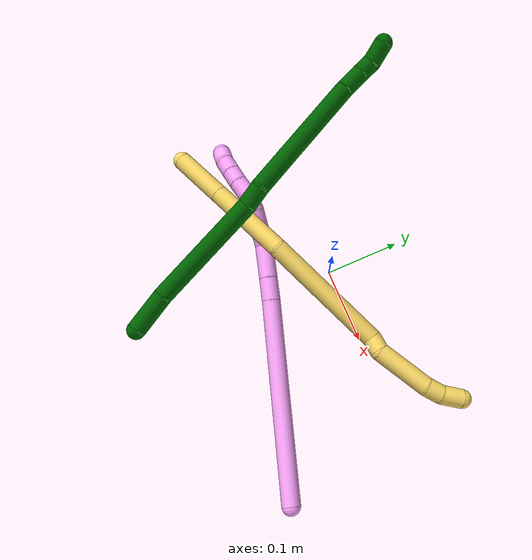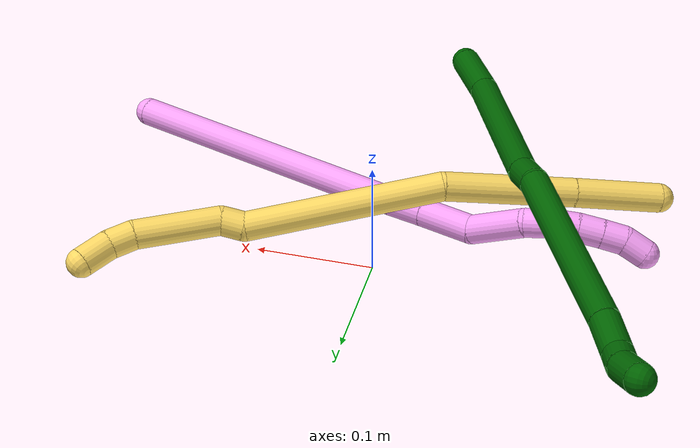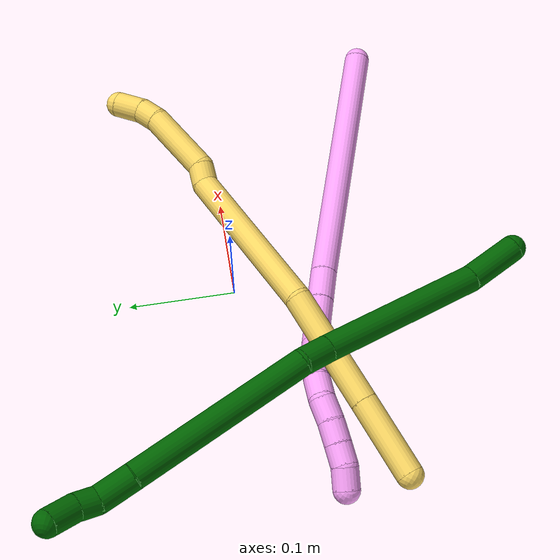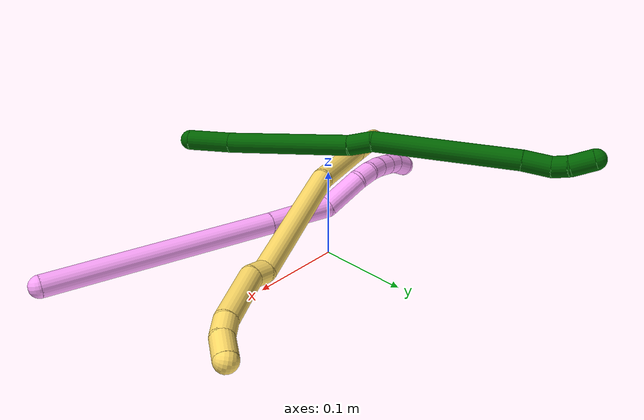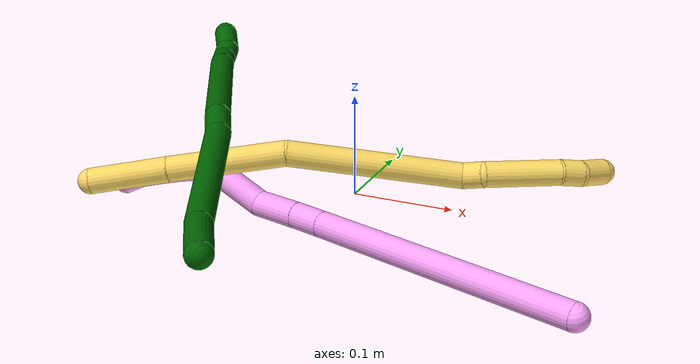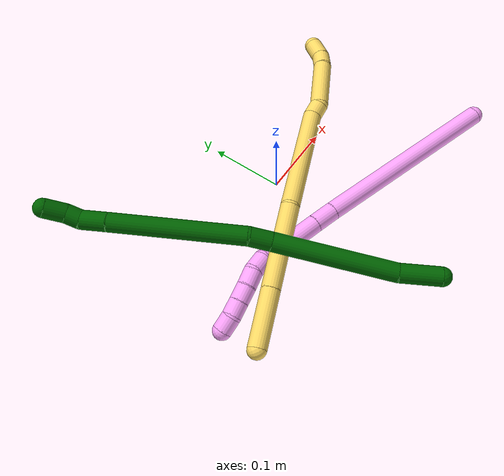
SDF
<sdf version="1.7">
 <world name="default">
  <model name="photoneo_s_sensor">
   <static>1</static>
   <pose>0 0 2 1.57079 1.57079 3.14159</pose>
   <link name="link">
    <inertial><mass>0.1</mass></inertial>
    <sensor name="sensor" type="depth">
     <update_rate>30</update_rate>
     <camera>
      <horizontal_fov>1.22</horizontal_fov>
      <image><width>1920</width><height>1200</height><format>B8G8R8</format></image>
      <clip><near>0.1</near><far>4</far></clip>
      <depth_camera><output>points</output></depth_camera>
     </camera>
     <plugin name="camera_plugin" filename="libgazebo_ros_depth_camera.so">
      <baseline>0.2</baseline>
      <alwaysOn>1</alwaysOn>
      <updateRate>0.0</updateRate>
      <cameraName>camera_ir</cameraName>
      <imageTopicName>/camera/color/image_raw</imageTopicName>
      <cameraInfoTopicName>/camera/color/camera_info</cameraInfoTopicName>
      <depthImageTopicName>/camera/depth/image_raw</depthImageTopicName>
      <depthImageCameraInfoTopicName>/camera/depth/camera_info</depthImageCameraInfoTopicName>
      <pointCloudTopicName>/camera/depth/points</pointCloudTopicName>
      <frameName>fr_optical</frameName>
      <pointCloudCutoff>0.1</pointCloudCutoff>
      <pointCloudCutoffMax>2.0</pointCloudCutoffMax>
      <distortionK1>0</distortionK1>
      <distortionK2>0</distortionK2>
      <distortionK3>0</distortionK3>
      <distortionT1>0</distortionT1>
      <distortionT2>0</distortionT2>
      <CxPrime>0</CxPrime>
      <Cx>0</Cx>
      <Cy>0</Cy>
      <focalLength>0</focalLength>
      <hackBaseline>0</hackBaseline>
     </plugin>
    </sensor>
   </link>
  </model>
  <model name="4">
   <static>0</static>
   <link name="4">
    <collision name="collision-cylinder-e_1_1_4">
     <pose>-0.129312 0.028357 0.001191 -1.52883 -1.35473 1.31392</pose>
     <geometry><cylinder><radius>0.0125</radius><length>0.26478</length></cylinder></geometry>
     <surface>
      <friction><ode><mu>1.16</mu><mu2>1.16</mu2><slip1>0</slip1><slip2>0</slip2></ode></friction>
      <contact><ode><kp>1e+06</kp><kd>1</kd><max_vel>0</max_vel><min_depth>0.001</min_depth></ode></contact>
     </surface>
    </collision>
    <visual name="visual-cylinder-e_1_1_4">
     <pose>-0.129312 0.028357 0.001191 -1.52883 -1.35473 1.31392</pose>
     <geometry><cylinder><radius>0.0125</radius><length>0.26478</length></cylinder></geometry>
     <material><ambient>1 0.65098 0.996078 1</ambient></material>
    </visual>
    <collision name="collision-cylinder-e_2_4_5">
     <pose>-0.273725 0.060419 0.002257 -1.60443 -1.33014 1.36294</pose>
     <geometry><cylinder><radius>0.0125</radius><length>0.031099</length></cylinder></geometry>
     <surface>
      <friction><ode><mu>1.16</mu><mu2>1.16</mu2><slip1>0</slip1><slip2>0</slip2></ode></friction>
      <contact><ode><kp>1e+06</kp><kd>1</kd><max_vel>0</max_vel><min_depth>0.001</min_depth></ode></contact>
     </surface>
    </collision>
    <visual name="visual-cylinder-e_2_4_5">
     <pose>-0.273725 0.060419 0.002257 -1.60443 -1.33014 1.36294</pose>
     <geometry><cylinder><radius>0.0125</radius><length>0.031099</length></cylinder></geometry>
     <material><ambient>1 0.65098 0.996078 1</ambient></material>
    </visual>
    <collision name="collision-cylinder-e_3_5_6">
     <pose>-0.311508 0.069875 0.002469 -1.51244 -1.32202 1.26587</pose>
     <geometry><cylinder><radius>0.0125</radius><length>0.046803</length></cylinder></geometry>
     <surface>
      <friction><ode><mu>1.16</mu><mu2>1.16</mu2><slip1>0</slip1><slip2>0</slip2></ode></friction>
      <contact><ode><kp>1e+06</kp><kd>1</kd><max_vel>0</max_vel><min_depth>0.001</min_depth></ode></contact>
     </surface>
    </collision>
    <visual name="visual-cylinder-e_3_5_6">
     <pose>-0.311508 0.069875 0.002469 -1.51244 -1.32202 1.26587</pose>
     <geometry><cylinder><radius>0.0125</radius><length>0.046803</length></cylinder></geometry>
     <material><ambient>1 0.65098 0.996078 1</ambient></material>
    </visual>
    <collision name="collision-cylinder-e_4_6_7">
     <pose>-0.356661 0.081131 -0.008137 -2.67557 -1.07178 2.38121</pose>
     <geometry><cylinder><radius>0.0125</radius><length>0.051187</length></cylinder></geometry>
     <surface>
      <friction><ode><mu>1.16</mu><mu2>1.16</mu2><slip1>0</slip1><slip2>0</slip2></ode></friction>
      <contact><ode><kp>1e+06</kp><kd>1</kd><max_vel>0</max_vel><min_depth>0.001</min_depth></ode></contact>
     </surface>
    </collision>
    <visual name="visual-cylinder-e_4_6_7">
     <pose>-0.356661 0.081131 -0.008137 -2.67557 -1.07178 2.38121</pose>
     <geometry><cylinder><radius>0.0125</radius><length>0.051187</length></cylinder></geometry>
     <material><ambient>1 0.65098 0.996078 1</ambient></material>
    </visual>
    <collision name="collision-cylinder-e_5_7_8">
     <pose>-0.388567 0.091933 -0.021413 -1.9856 -1.02034 1.41807</pose>
     <geometry><cylinder><radius>0.0125</radius><length>0.022136</length></cylinder></geometry>
     <surface>
      <friction><ode><mu>1.16</mu><mu2>1.16</mu2><slip1>0</slip1><slip2>0</slip2></ode></friction>
      <contact><ode><kp>1e+06</kp><kd>1</kd><max_vel>0</max_vel><min_depth>0.001</min_depth></ode></contact>
     </surface>
    </collision>
    <visual name="visual-cylinder-e_5_7_8">
     <pose>-0.388567 0.091933 -0.021413 -1.9856 -1.02034 1.41807</pose>
     <geometry><cylinder><radius>0.0125</radius><length>0.022136</length></cylinder></geometry>
     <material><ambient>1 0.65098 0.996078 1</ambient></material>
    </visual>
    <collision name="collision-cylinder-e_6_8_9">
     <pose>-0.406127 0.104699 -0.023736 -1.56943 -0.827636 0.826629</pose>
     <geometry><cylinder><radius>0.0125</radius><length>0.022074</length></cylinder></geometry>
     <surface>
      <friction><ode><mu>1.16</mu><mu2>1.16</mu2><slip1>0</slip1><slip2>0</slip2></ode></friction>
      <contact><ode><kp>1e+06</kp><kd>1</kd><max_vel>0</max_vel><min_depth>0.001</min_depth></ode></contact>
     </surface>
    </collision>
    <visual name="visual-cylinder-e_6_8_9">
     <pose>-0.406127 0.104699 -0.023736 -1.56943 -0.827636 0.826629</pose>
     <geometry><cylinder><radius>0.0125</radius><length>0.022074</length></cylinder></geometry>
     <material><ambient>1 0.65098 0.996078 1</ambient></material>
    </visual>
    <collision name="collision-cylinder-e_7_9_10">
     <pose>-0.422238 0.118926 -0.022634 -1.4107 -0.861898 0.746284</pose>
     <geometry><cylinder><radius>0.0125</radius><length>0.021034</length></cylinder></geometry>
     <surface>
      <friction><ode><mu>1.16</mu><mu2>1.16</mu2><slip1>0</slip1><slip2>0</slip2></ode></friction>
      <contact><ode><kp>1e+06</kp><kd>1</kd><max_vel>0</max_vel><min_depth>0.001</min_depth></ode></contact>
     </surface>
    </collision>
    <visual name="visual-cylinder-e_7_9_10">
     <pose>-0.422238 0.118926 -0.022634 -1.4107 -0.861898 0.746284</pose>
     <geometry><cylinder><radius>0.0125</radius><length>0.021034</length></cylinder></geometry>
     <material><ambient>1 0.65098 0.996078 1</ambient></material>
    </visual>
    <collision name="collision-cylinder-e_8_10_11">
     <pose>-0.4378 0.132133 -0.020199 -1.36539 -0.855318 0.709844</pose>
     <geometry><cylinder><radius>0.0125</radius><length>0.020081</length></cylinder></geometry>
     <surface>
      <friction><ode><mu>1.16</mu><mu2>1.16</mu2><slip1>0</slip1><slip2>0</slip2></ode></friction>
      <contact><ode><kp>1e+06</kp><kd>1</kd><max_vel>0</max_vel><min_depth>0.001</min_depth></ode></contact>
     </surface>
    </collision>
    <visual name="visual-cylinder-e_8_10_11">
     <pose>-0.4378 0.132133 -0.020199 -1.36539 -0.855318 0.709844</pose>
     <geometry><cylinder><radius>0.0125</radius><length>0.020081</length></cylinder></geometry>
     <material><ambient>1 0.65098 0.996078 1</ambient></material>
    </visual>
    <collision name="collision-cylinder-e_9_11_2">
     <pose>-0.453259 0.143935 -0.01468 -0.90841 -0.859656 0.440384</pose>
     <geometry><cylinder><radius>0.0125</radius><length>0.020804</length></cylinder></geometry>
     <surface>
      <friction><ode><mu>1.16</mu><mu2>1.16</mu2><slip1>0</slip1><slip2>0</slip2></ode></friction>
      <contact><ode><kp>1e+06</kp><kd>1</kd><max_vel>0</max_vel><min_depth>0.001</min_depth></ode></contact>
     </surface>
    </collision>
    <visual name="visual-cylinder-e_9_11_2">
     <pose>-0.453259 0.143935 -0.01468 -0.90841 -0.859656 0.440384</pose>
     <geometry><cylinder><radius>0.0125</radius><length>0.020804</length></cylinder></geometry>
     <material><ambient>1 0.65098 0.996078 1</ambient></material>
    </visual>
    <collision name="collision-sphere-2">
     <pose>-0.46114 0.149289 -0.010505 0 -0 0</pose>
     <geometry><sphere><radius>0.0125</radius></sphere></geometry>
     <surface>
      <friction><ode><mu>1.16</mu><mu2>1.16</mu2><slip1>0</slip1><slip2>0</slip2></ode></friction>
      <contact><ode><kp>1e+06</kp><kd>1</kd><max_vel>0</max_vel><min_depth>0.001</min_depth></ode></contact>
     </surface>
    </collision>
    <visual name="visual-sphere-2">
     <pose>-0.46114 0.149289 -0.010505 0 -0 0</pose>
     <geometry><sphere><radius>0.0125</radius></sphere></geometry>
     <material><ambient>1 0.65098 0.996078 1</ambient></material>
    </visual>
    <collision name="collision-sphere-11">
     <pose>-0.445378 0.138581 -0.018856 0 -0 0</pose>
     <geometry><sphere><radius>0.0125</radius></sphere></geometry>
     <surface>
      <friction><ode><mu>1.16</mu><mu2>1.16</mu2><slip1>0</slip1><slip2>0</slip2></ode></friction>
      <contact><ode><kp>1e+06</kp><kd>1</kd><max_vel>0</max_vel><min_depth>0.001</min_depth></ode></contact>
     </surface>
    </collision>
    <visual name="visual-sphere-11">
     <pose>-0.445378 0.138581 -0.018856 0 -0 0</pose>
     <geometry><sphere><radius>0.0125</radius></sphere></geometry>
     <material><ambient>1 0.65098 0.996078 1</ambient></material>
    </visual>
    <collision name="collision-sphere-10">
     <pose>-0.430221 0.125685 -0.021542 0 -0 0</pose>
     <geometry><sphere><radius>0.0125</radius></sphere></geometry>
     <surface>
      <friction><ode><mu>1.16</mu><mu2>1.16</mu2><slip1>0</slip1><slip2>0</slip2></ode></friction>
      <contact><ode><kp>1e+06</kp><kd>1</kd><max_vel>0</max_vel><min_depth>0.001</min_depth></ode></contact>
     </surface>
    </collision>
    <visual name="visual-sphere-10">
     <pose>-0.430221 0.125685 -0.021542 0 -0 0</pose>
     <geometry><sphere><radius>0.0125</radius></sphere></geometry>
     <material><ambient>1 0.65098 0.996078 1</ambient></material>
    </visual>
    <collision name="collision-sphere-9">
     <pose>-0.414254 0.112167 -0.023725 0 -0 0</pose>
     <geometry><sphere><radius>0.0125</radius></sphere></geometry>
     <surface>
      <friction><ode><mu>1.16</mu><mu2>1.16</mu2><slip1>0</slip1><slip2>0</slip2></ode></friction>
      <contact><ode><kp>1e+06</kp><kd>1</kd><max_vel>0</max_vel><min_depth>0.001</min_depth></ode></contact>
     </surface>
    </collision>
    <visual name="visual-sphere-9">
     <pose>-0.414254 0.112167 -0.023725 0 -0 0</pose>
     <geometry><sphere><radius>0.0125</radius></sphere></geometry>
     <material><ambient>1 0.65098 0.996078 1</ambient></material>
    </visual>
    <collision name="collision-sphere-4">
     <pose>-0.258623 0.056715 0.002382 0 -0 0</pose>
     <geometry><sphere><radius>0.0125</radius></sphere></geometry>
     <surface>
      <friction><ode><mu>1.16</mu><mu2>1.16</mu2><slip1>0</slip1><slip2>0</slip2></ode></friction>
      <contact><ode><kp>1e+06</kp><kd>1</kd><max_vel>0</max_vel><min_depth>0.001</min_depth></ode></contact>
     </surface>
    </collision>
    <visual name="visual-sphere-4">
     <pose>-0.258623 0.056715 0.002382 0 -0 0</pose>
     <geometry><sphere><radius>0.0125</radius></sphere></geometry>
     <material><ambient>1 0.65098 0.996078 1</ambient></material>
    </visual>
    <collision name="collision-sphere-1">
     <geometry><sphere><radius>0.0125</radius></sphere></geometry>
     <surface>
      <friction><ode><mu>1.16</mu><mu2>1.16</mu2><slip1>0</slip1><slip2>0</slip2></ode></friction>
      <contact><ode><kp>1e+06</kp><kd>1</kd><max_vel>0</max_vel><min_depth>0.001</min_depth></ode></contact>
     </surface>
    </collision>
    <visual name="visual-sphere-1">
     <geometry><sphere><radius>0.0125</radius></sphere></geometry>
     <material><ambient>1 0.65098 0.996078 1</ambient></material>
    </visual>
    <collision name="collision-sphere-8">
     <pose>-0.398 0.097231 -0.023746 0 -0 0</pose>
     <geometry><sphere><radius>0.0125</radius></sphere></geometry>
     <surface>
      <friction><ode><mu>1.16</mu><mu2>1.16</mu2><slip1>0</slip1><slip2>0</slip2></ode></friction>
      <contact><ode><kp>1e+06</kp><kd>1</kd><max_vel>0</max_vel><min_depth>0.001</min_depth></ode></contact>
     </surface>
    </collision>
    <visual name="visual-sphere-8">
     <pose>-0.398 0.097231 -0.023746 0 -0 0</pose>
     <geometry><sphere><radius>0.0125</radius></sphere></geometry>
     <material><ambient>1 0.65098 0.996078 1</ambient></material>
    </visual>
    <collision name="collision-sphere-5">
     <pose>-0.288827 0.064123 0.002132 0 -0 0</pose>
     <geometry><sphere><radius>0.0125</radius></sphere></geometry>
     <surface>
      <friction><ode><mu>1.16</mu><mu2>1.16</mu2><slip1>0</slip1><slip2>0</slip2></ode></friction>
      <contact><ode><kp>1e+06</kp><kd>1</kd><max_vel>0</max_vel><min_depth>0.001</min_depth></ode></contact>
     </surface>
    </collision>
    <visual name="visual-sphere-5">
     <pose>-0.288827 0.064123 0.002132 0 -0 0</pose>
     <geometry><sphere><radius>0.0125</radius></sphere></geometry>
     <material><ambient>1 0.65098 0.996078 1</ambient></material>
    </visual>
    <collision name="collision-sphere-6">
     <pose>-0.334189 0.075627 0.002805 0 -0 0</pose>
     <geometry><sphere><radius>0.0125</radius></sphere></geometry>
     <surface>
      <friction><ode><mu>1.16</mu><mu2>1.16</mu2><slip1>0</slip1><slip2>0</slip2></ode></friction>
      <contact><ode><kp>1e+06</kp><kd>1</kd><max_vel>0</max_vel><min_depth>0.001</min_depth></ode></contact>
     </surface>
    </collision>
    <visual name="visual-sphere-6">
     <pose>-0.334189 0.075627 0.002805 0 -0 0</pose>
     <geometry><sphere><radius>0.0125</radius></sphere></geometry>
     <material><ambient>1 0.65098 0.996078 1</ambient></material>
    </visual>
    <collision name="collision-sphere-7">
     <pose>-0.379134 0.086634 -0.019079 0 -0 0</pose>
     <geometry><sphere><radius>0.0125</radius></sphere></geometry>
     <surface>
      <friction><ode><mu>1.16</mu><mu2>1.16</mu2><slip1>0</slip1><slip2>0</slip2></ode></friction>
      <contact><ode><kp>1e+06</kp><kd>1</kd><max_vel>0</max_vel><min_depth>0.001</min_depth></ode></contact>
     </surface>
    </collision>
    <visual name="visual-sphere-7">
     <pose>-0.379134 0.086634 -0.019079 0 -0 0</pose>
     <geometry><sphere><radius>0.0125</radius></sphere></geometry>
     <material><ambient>1 0.65098 0.996078 1</ambient></material>
    </visual>
    <inertial>
     <pose>-0.240514 0.058613 -0.004201 0 -0 0</pose>
     <mass>0.5</mass>
     <inertia>
      <ixx>0.000383</ixx>
      <ixy>0</ixy>
      <ixz>0</ixz>
      <iyy>0.001863</iyy>
      <iyz>0</iyz>
      <izz>0.001207</izz>
     </inertia>
    </inertial>
   </link>
   <pose>0.257734 -0.167037 0.004783 -2.8454 0.07249 -0.509089</pose>
  </model>
  <model name="5">
   <static>0</static>
   <link name="5">
    <collision name="collision-cylinder-e_1_1_4">
     <pose>0.031161 0.009544 -0.019354 -2.68345 0.965115 -2.30408</pose>
     <geometry><cylinder><radius>0.0125</radius><length>0.075807</length></cylinder></geometry>
     <surface>
      <friction><ode><mu>1.16</mu><mu2>1.16</mu2><slip1>0</slip1><slip2>0</slip2></ode></friction>
      <contact><ode><kp>1e+06</kp><kd>1</kd><max_vel>0</max_vel><min_depth>0.001</min_depth></ode></contact>
     </surface>
    </collision>
    <visual name="visual-cylinder-e_1_1_4">
     <pose>0.031161 0.009544 -0.019354 -2.68345 0.965115 -2.30408</pose>
     <geometry><cylinder><radius>0.0125</radius><length>0.075807</length></cylinder></geometry>
     <material><ambient>1 0.858824 0.4 1</ambient></material>
    </visual>
    <collision name="collision-cylinder-e_2_4_5">
     <pose>0.108769 0.034237 -0.067442 -2.65641 0.960505 -2.25463</pose>
     <geometry><cylinder><radius>0.0125</radius><length>0.113357</length></cylinder></geometry>
     <surface>
      <friction><ode><mu>1.16</mu><mu2>1.16</mu2><slip1>0</slip1><slip2>0</slip2></ode></friction>
      <contact><ode><kp>1e+06</kp><kd>1</kd><max_vel>0</max_vel><min_depth>0.001</min_depth></ode></contact>
     </surface>
    </collision>
    <visual name="visual-cylinder-e_2_4_5">
     <pose>0.108769 0.034237 -0.067442 -2.65641 0.960505 -2.25463</pose>
     <geometry><cylinder><radius>0.0125</radius><length>0.113357</length></cylinder></geometry>
     <material><ambient>1 0.858824 0.4 1</ambient></material>
    </visual>
    <collision name="collision-cylinder-e_3_5_6">
     <pose>0.217786 0.093822 -0.130539 -2.22905 0.839216 -1.47542</pose>
     <geometry><cylinder><radius>0.0125</radius><length>0.168171</length></cylinder></geometry>
     <surface>
      <friction><ode><mu>1.16</mu><mu2>1.16</mu2><slip1>0</slip1><slip2>0</slip2></ode></friction>
      <contact><ode><kp>1e+06</kp><kd>1</kd><max_vel>0</max_vel><min_depth>0.001</min_depth></ode></contact>
     </surface>
    </collision>
    <visual name="visual-cylinder-e_3_5_6">
     <pose>0.217786 0.093822 -0.130539 -2.22905 0.839216 -1.47542</pose>
     <geometry><cylinder><radius>0.0125</radius><length>0.168171</length></cylinder></geometry>
     <material><ambient>1 0.858824 0.4 1</ambient></material>
    </visual>
    <collision name="collision-cylinder-e_4_6_7">
     <pose>0.286754 0.140649 -0.17236 -2.83146 0.685001 -2.31522</pose>
     <geometry><cylinder><radius>0.0125</radius><length>0.020225</length></cylinder></geometry>
     <surface>
      <friction><ode><mu>1.16</mu><mu2>1.16</mu2><slip1>0</slip1><slip2>0</slip2></ode></friction>
      <contact><ode><kp>1e+06</kp><kd>1</kd><max_vel>0</max_vel><min_depth>0.001</min_depth></ode></contact>
     </surface>
    </collision>
    <visual name="visual-cylinder-e_4_6_7">
     <pose>0.286754 0.140649 -0.17236 -2.83146 0.685001 -2.31522</pose>
     <geometry><cylinder><radius>0.0125</radius><length>0.020225</length></cylinder></geometry>
     <material><ambient>1 0.858824 0.4 1</ambient></material>
    </visual>
    <collision name="collision-cylinder-e_5_7_8">
     <pose>0.323658 0.157863 -0.192896 -2.29372 0.995818 -1.75579</pose>
     <geometry><cylinder><radius>0.0125</radius><length>0.072704</length></cylinder></geometry>
     <surface>
      <friction><ode><mu>1.16</mu><mu2>1.16</mu2><slip1>0</slip1><slip2>0</slip2></ode></friction>
      <contact><ode><kp>1e+06</kp><kd>1</kd><max_vel>0</max_vel><min_depth>0.001</min_depth></ode></contact>
     </surface>
    </collision>
    <visual name="visual-cylinder-e_5_7_8">
     <pose>0.323658 0.157863 -0.192896 -2.29372 0.995818 -1.75579</pose>
     <geometry><cylinder><radius>0.0125</radius><length>0.072704</length></cylinder></geometry>
     <material><ambient>1 0.858824 0.4 1</ambient></material>
    </visual>
    <collision name="collision-cylinder-e_6_8_9">
     <pose>0.363425 0.178217 -0.207722 -1.87687 1.01127 -1.29413</pose>
     <geometry><cylinder><radius>0.0125</radius><length>0.021853</length></cylinder></geometry>
     <surface>
      <friction><ode><mu>1.16</mu><mu2>1.16</mu2><slip1>0</slip1><slip2>0</slip2></ode></friction>
      <contact><ode><kp>1e+06</kp><kd>1</kd><max_vel>0</max_vel><min_depth>0.001</min_depth></ode></contact>
     </surface>
    </collision>
    <visual name="visual-cylinder-e_6_8_9">
     <pose>0.363425 0.178217 -0.207722 -1.87687 1.01127 -1.29413</pose>
     <geometry><cylinder><radius>0.0125</radius><length>0.021853</length></cylinder></geometry>
     <material><ambient>1 0.858824 0.4 1</ambient></material>
    </visual>
    <collision name="collision-cylinder-e_7_9_2">
     <pose>0.385128 0.18983 -0.207874 -1.31419 1.10283 -0.886061</pose>
     <geometry><cylinder><radius>0.0125</radius><length>0.027883</length></cylinder></geometry>
     <surface>
      <friction><ode><mu>1.16</mu><mu2>1.16</mu2><slip1>0</slip1><slip2>0</slip2></ode></friction>
      <contact><ode><kp>1e+06</kp><kd>1</kd><max_vel>0</max_vel><min_depth>0.001</min_depth></ode></contact>
     </surface>
    </collision>
    <visual name="visual-cylinder-e_7_9_2">
     <pose>0.385128 0.18983 -0.207874 -1.31419 1.10283 -0.886061</pose>
     <geometry><cylinder><radius>0.0125</radius><length>0.027883</length></cylinder></geometry>
     <material><ambient>1 0.858824 0.4 1</ambient></material>
    </visual>
    <collision name="collision-sphere-2">
     <pose>0.39757 0.195913 -0.206278 0 -0 0</pose>
     <geometry><sphere><radius>0.0125</radius></sphere></geometry>
     <surface>
      <friction><ode><mu>1.16</mu><mu2>1.16</mu2><slip1>0</slip1><slip2>0</slip2></ode></friction>
      <contact><ode><kp>1e+06</kp><kd>1</kd><max_vel>0</max_vel><min_depth>0.001</min_depth></ode></contact>
     </surface>
    </collision>
    <visual name="visual-sphere-2">
     <pose>0.39757 0.195913 -0.206278 0 -0 0</pose>
     <geometry><sphere><radius>0.0125</radius></sphere></geometry>
     <material><ambient>1 0.858824 0.4 1</ambient></material>
    </visual>
    <collision name="collision-sphere-9">
     <pose>0.372685 0.183747 -0.20947 0 -0 0</pose>
     <geometry><sphere><radius>0.0125</radius></sphere></geometry>
     <surface>
      <friction><ode><mu>1.16</mu><mu2>1.16</mu2><slip1>0</slip1><slip2>0</slip2></ode></friction>
      <contact><ode><kp>1e+06</kp><kd>1</kd><max_vel>0</max_vel><min_depth>0.001</min_depth></ode></contact>
     </surface>
    </collision>
    <visual name="visual-sphere-9">
     <pose>0.372685 0.183747 -0.20947 0 -0 0</pose>
     <geometry><sphere><radius>0.0125</radius></sphere></geometry>
     <material><ambient>1 0.858824 0.4 1</ambient></material>
    </visual>
    <collision name="collision-sphere-4">
     <pose>0.062322 0.019088 -0.038708 0 -0 0</pose>
     <geometry><sphere><radius>0.0125</radius></sphere></geometry>
     <surface>
      <friction><ode><mu>1.16</mu><mu2>1.16</mu2><slip1>0</slip1><slip2>0</slip2></ode></friction>
      <contact><ode><kp>1e+06</kp><kd>1</kd><max_vel>0</max_vel><min_depth>0.001</min_depth></ode></contact>
     </surface>
    </collision>
    <visual name="visual-sphere-4">
     <pose>0.062322 0.019088 -0.038708 0 -0 0</pose>
     <geometry><sphere><radius>0.0125</radius></sphere></geometry>
     <material><ambient>1 0.858824 0.4 1</ambient></material>
    </visual>
    <collision name="collision-sphere-1">
     <geometry><sphere><radius>0.0125</radius></sphere></geometry>
     <surface>
      <friction><ode><mu>1.16</mu><mu2>1.16</mu2><slip1>0</slip1><slip2>0</slip2></ode></friction>
      <contact><ode><kp>1e+06</kp><kd>1</kd><max_vel>0</max_vel><min_depth>0.001</min_depth></ode></contact>
     </surface>
    </collision>
    <visual name="visual-sphere-1">
     <geometry><sphere><radius>0.0125</radius></sphere></geometry>
     <material><ambient>1 0.858824 0.4 1</ambient></material>
    </visual>
    <collision name="collision-sphere-8">
     <pose>0.354165 0.172687 -0.205975 0 -0 0</pose>
     <geometry><sphere><radius>0.0125</radius></sphere></geometry>
     <surface>
      <friction><ode><mu>1.16</mu><mu2>1.16</mu2><slip1>0</slip1><slip2>0</slip2></ode></friction>
      <contact><ode><kp>1e+06</kp><kd>1</kd><max_vel>0</max_vel><min_depth>0.001</min_depth></ode></contact>
     </surface>
    </collision>
    <visual name="visual-sphere-8">
     <pose>0.354165 0.172687 -0.205975 0 -0 0</pose>
     <geometry><sphere><radius>0.0125</radius></sphere></geometry>
     <material><ambient>1 0.858824 0.4 1</ambient></material>
    </visual>
    <collision name="collision-sphere-5">
     <pose>0.155216 0.049386 -0.096176 0 -0 0</pose>
     <geometry><sphere><radius>0.0125</radius></sphere></geometry>
     <surface>
      <friction><ode><mu>1.16</mu><mu2>1.16</mu2><slip1>0</slip1><slip2>0</slip2></ode></friction>
      <contact><ode><kp>1e+06</kp><kd>1</kd><max_vel>0</max_vel><min_depth>0.001</min_depth></ode></contact>
     </surface>
    </collision>
    <visual name="visual-sphere-5">
     <pose>0.155216 0.049386 -0.096176 0 -0 0</pose>
     <geometry><sphere><radius>0.0125</radius></sphere></geometry>
     <material><ambient>1 0.858824 0.4 1</ambient></material>
    </visual>
    <collision name="collision-sphere-6">
     <pose>0.280356 0.138259 -0.164902 0 -0 0</pose>
     <geometry><sphere><radius>0.0125</radius></sphere></geometry>
     <surface>
      <friction><ode><mu>1.16</mu><mu2>1.16</mu2><slip1>0</slip1><slip2>0</slip2></ode></friction>
      <contact><ode><kp>1e+06</kp><kd>1</kd><max_vel>0</max_vel><min_depth>0.001</min_depth></ode></contact>
     </surface>
    </collision>
    <visual name="visual-sphere-6">
     <pose>0.280356 0.138259 -0.164902 0 -0 0</pose>
     <geometry><sphere><radius>0.0125</radius></sphere></geometry>
     <material><ambient>1 0.858824 0.4 1</ambient></material>
    </visual>
    <collision name="collision-sphere-7">
     <pose>0.293151 0.143039 -0.179817 0 -0 0</pose>
     <geometry><sphere><radius>0.0125</radius></sphere></geometry>
     <surface>
      <friction><ode><mu>1.16</mu><mu2>1.16</mu2><slip1>0</slip1><slip2>0</slip2></ode></friction>
      <contact><ode><kp>1e+06</kp><kd>1</kd><max_vel>0</max_vel><min_depth>0.001</min_depth></ode></contact>
     </surface>
    </collision>
    <visual name="visual-sphere-7">
     <pose>0.293151 0.143039 -0.179817 0 -0 0</pose>
     <geometry><sphere><radius>0.0125</radius></sphere></geometry>
     <material><ambient>1 0.858824 0.4 1</ambient></material>
    </visual>
    <inertial>
     <pose>0.198657 0.087784 -0.117822 0 -0 0</pose>
     <mass>0.5</mass>
     <inertia>
      <ixx>-0.000369</ixx>
      <ixy>0</ixy>
      <ixz>0</ixz>
      <iyy>3.8e-05</iyy>
      <iyz>0</iyz>
      <izz>-0.000759</izz>
     </inertia>
    </inertial>
   </link>
   <pose>-0.220012 -0.123698 0.024403 -1.87327 -0.312916 0.991308</pose>
  </model>
  <model name="6">
   <static>0</static>
   <link name="6">
    <collision name="collision-cylinder-e_1_1_4">
     <pose>-0.008882 0.014917 0.020582 -0.627135 -0.336161 0.109933</pose>
     <geometry><cylinder><radius>0.0125</radius><length>0.053852</length></cylinder></geometry>
     <surface>
      <friction><ode><mu>1.16</mu><mu2>1.16</mu2><slip1>0</slip1><slip2>0</slip2></ode></friction>
      <contact><ode><kp>1e+06</kp><kd>1</kd><max_vel>0</max_vel><min_depth>0.001</min_depth></ode></contact>
     </surface>
    </collision>
    <visual name="visual-cylinder-e_1_1_4">
     <pose>-0.008882 0.014917 0.020582 -0.627135 -0.336161 0.109933</pose>
     <geometry><cylinder><radius>0.0125</radius><length>0.053852</length></cylinder></geometry>
     <material><ambient>0 0.392157 0.003922 1</ambient></material>
    </visual>
    <collision name="collision-cylinder-e_2_4_5">
     <pose>-0.037919 0.083527 0.096401 -0.771231 -0.255906 0.104358</pose>
     <geometry><cylinder><radius>0.0125</radius><length>0.159253</length></cylinder></geometry>
     <surface>
      <friction><ode><mu>1.16</mu><mu2>1.16</mu2><slip1>0</slip1><slip2>0</slip2></ode></friction>
      <contact><ode><kp>1e+06</kp><kd>1</kd><max_vel>0</max_vel><min_depth>0.001</min_depth></ode></contact>
     </surface>
    </collision>
    <visual name="visual-cylinder-e_2_4_5">
     <pose>-0.037919 0.083527 0.096401 -0.771231 -0.255906 0.104358</pose>
     <geometry><cylinder><radius>0.0125</radius><length>0.159253</length></cylinder></geometry>
     <material><ambient>0 0.392157 0.003922 1</ambient></material>
    </visual>
    <collision name="collision-cylinder-e_3_5_6">
     <pose>-0.059369 0.146524 0.1628 -0.694838 -0.088877 0.032201</pose>
     <geometry><cylinder><radius>0.0125</radius><length>0.029176</length></cylinder></geometry>
     <surface>
      <friction><ode><mu>1.16</mu><mu2>1.16</mu2><slip1>0</slip1><slip2>0</slip2></ode></friction>
      <contact><ode><kp>1e+06</kp><kd>1</kd><max_vel>0</max_vel><min_depth>0.001</min_depth></ode></contact>
     </surface>
    </collision>
    <visual name="visual-cylinder-e_3_5_6">
     <pose>-0.059369 0.146524 0.1628 -0.694838 -0.088877 0.032201</pose>
     <geometry><cylinder><radius>0.0125</radius><length>0.029176</length></cylinder></geometry>
     <material><ambient>0 0.392157 0.003922 1</ambient></material>
    </visual>
    <collision name="collision-cylinder-e_4_6_7">
     <pose>-0.093677 0.205513 0.237722 -0.661961 -0.387732 0.134723</pose>
     <geometry><cylinder><radius>0.0125</radius><length>0.17463</length></cylinder></geometry>
     <surface>
      <friction><ode><mu>1.16</mu><mu2>1.16</mu2><slip1>0</slip1><slip2>0</slip2></ode></friction>
      <contact><ode><kp>1e+06</kp><kd>1</kd><max_vel>0</max_vel><min_depth>0.001</min_depth></ode></contact>
     </surface>
    </collision>
    <visual name="visual-cylinder-e_4_6_7">
     <pose>-0.093677 0.205513 0.237722 -0.661961 -0.387732 0.134723</pose>
     <geometry><cylinder><radius>0.0125</radius><length>0.17463</length></cylinder></geometry>
     <material><ambient>0 0.392157 0.003922 1</ambient></material>
    </visual>
    <collision name="collision-cylinder-e_5_7_8">
     <pose>-0.134617 0.264891 0.313302 -0.686863 -0.478425 0.173985</pose>
     <geometry><cylinder><radius>0.0125</radius><length>0.034437</length></cylinder></geometry>
     <surface>
      <friction><ode><mu>1.16</mu><mu2>1.16</mu2><slip1>0</slip1><slip2>0</slip2></ode></friction>
      <contact><ode><kp>1e+06</kp><kd>1</kd><max_vel>0</max_vel><min_depth>0.001</min_depth></ode></contact>
     </surface>
    </collision>
    <visual name="visual-cylinder-e_5_7_8">
     <pose>-0.134617 0.264891 0.313302 -0.686863 -0.478425 0.173985</pose>
     <geometry><cylinder><radius>0.0125</radius><length>0.034437</length></cylinder></geometry>
     <material><ambient>0 0.392157 0.003922 1</ambient></material>
    </visual>
    <collision name="collision-cylinder-e_6_8_9">
     <pose>-0.143926 0.282348 0.331339 -0.895568 -0.13802 0.066376</pose>
     <geometry><cylinder><radius>0.0125</radius><length>0.020085</length></cylinder></geometry>
     <surface>
      <friction><ode><mu>1.16</mu><mu2>1.16</mu2><slip1>0</slip1><slip2>0</slip2></ode></friction>
      <contact><ode><kp>1e+06</kp><kd>1</kd><max_vel>0</max_vel><min_depth>0.001</min_depth></ode></contact>
     </surface>
    </collision>
    <visual name="visual-cylinder-e_6_8_9">
     <pose>-0.143926 0.282348 0.331339 -0.895568 -0.13802 0.066376</pose>
     <geometry><cylinder><radius>0.0125</radius><length>0.020085</length></cylinder></geometry>
     <material><ambient>0 0.392157 0.003922 1</ambient></material>
    </visual>
    <collision name="collision-cylinder-e_7_9_2">
     <pose>-0.145073 0.298911 0.348805 -0.663797 0.01643 -0.005663</pose>
     <geometry><cylinder><radius>0.0125</radius><length>0.028566</length></cylinder></geometry>
     <surface>
      <friction><ode><mu>1.16</mu><mu2>1.16</mu2><slip1>0</slip1><slip2>0</slip2></ode></friction>
      <contact><ode><kp>1e+06</kp><kd>1</kd><max_vel>0</max_vel><min_depth>0.001</min_depth></ode></contact>
     </surface>
    </collision>
    <visual name="visual-cylinder-e_7_9_2">
     <pose>-0.145073 0.298911 0.348805 -0.663797 0.01643 -0.005663</pose>
     <geometry><cylinder><radius>0.0125</radius><length>0.028566</length></cylinder></geometry>
     <material><ambient>0 0.392157 0.003922 1</ambient></material>
    </visual>
    <collision name="collision-sphere-2">
     <pose>-0.144838 0.30771 0.360054 0 -0 0</pose>
     <geometry><sphere><radius>0.0125</radius></sphere></geometry>
     <surface>
      <friction><ode><mu>1.16</mu><mu2>1.16</mu2><slip1>0</slip1><slip2>0</slip2></ode></friction>
      <contact><ode><kp>1e+06</kp><kd>1</kd><max_vel>0</max_vel><min_depth>0.001</min_depth></ode></contact>
     </surface>
    </collision>
    <visual name="visual-sphere-2">
     <pose>-0.144838 0.30771 0.360054 0 -0 0</pose>
     <geometry><sphere><radius>0.0125</radius></sphere></geometry>
     <material><ambient>0 0.392157 0.003922 1</ambient></material>
    </visual>
    <collision name="collision-sphere-9">
     <pose>-0.145307 0.290112 0.337556 0 -0 0</pose>
     <geometry><sphere><radius>0.0125</radius></sphere></geometry>
     <surface>
      <friction><ode><mu>1.16</mu><mu2>1.16</mu2><slip1>0</slip1><slip2>0</slip2></ode></friction>
      <contact><ode><kp>1e+06</kp><kd>1</kd><max_vel>0</max_vel><min_depth>0.001</min_depth></ode></contact>
     </surface>
    </collision>
    <visual name="visual-sphere-9">
     <pose>-0.145307 0.290112 0.337556 0 -0 0</pose>
     <geometry><sphere><radius>0.0125</radius></sphere></geometry>
     <material><ambient>0 0.392157 0.003922 1</ambient></material>
    </visual>
    <collision name="collision-sphere-4">
     <pose>-0.017764 0.029833 0.041164 0 -0 0</pose>
     <geometry><sphere><radius>0.0125</radius></sphere></geometry>
     <surface>
      <friction><ode><mu>1.16</mu><mu2>1.16</mu2><slip1>0</slip1><slip2>0</slip2></ode></friction>
      <contact><ode><kp>1e+06</kp><kd>1</kd><max_vel>0</max_vel><min_depth>0.001</min_depth></ode></contact>
     </surface>
    </collision>
    <visual name="visual-sphere-4">
     <pose>-0.017764 0.029833 0.041164 0 -0 0</pose>
     <geometry><sphere><radius>0.0125</radius></sphere></geometry>
     <material><ambient>0 0.392157 0.003922 1</ambient></material>
    </visual>
    <collision name="collision-sphere-1">
     <geometry><sphere><radius>0.0125</radius></sphere></geometry>
     <surface>
      <friction><ode><mu>1.16</mu><mu2>1.16</mu2><slip1>0</slip1><slip2>0</slip2></ode></friction>
      <contact><ode><kp>1e+06</kp><kd>1</kd><max_vel>0</max_vel><min_depth>0.001</min_depth></ode></contact>
     </surface>
    </collision>
    <visual name="visual-sphere-1">
     <geometry><sphere><radius>0.0125</radius></sphere></geometry>
     <material><ambient>0 0.392157 0.003922 1</ambient></material>
    </visual>
    <collision name="collision-sphere-8">
     <pose>-0.142544 0.274584 0.325121 0 -0 0</pose>
     <geometry><sphere><radius>0.0125</radius></sphere></geometry>
     <surface>
      <friction><ode><mu>1.16</mu><mu2>1.16</mu2><slip1>0</slip1><slip2>0</slip2></ode></friction>
      <contact><ode><kp>1e+06</kp><kd>1</kd><max_vel>0</max_vel><min_depth>0.001</min_depth></ode></contact>
     </surface>
    </collision>
    <visual name="visual-sphere-8">
     <pose>-0.142544 0.274584 0.325121 0 -0 0</pose>
     <geometry><sphere><radius>0.0125</radius></sphere></geometry>
     <material><ambient>0 0.392157 0.003922 1</ambient></material>
    </visual>
    <collision name="collision-sphere-5">
     <pose>-0.058074 0.137221 0.151638 0 -0 0</pose>
     <geometry><sphere><radius>0.0125</radius></sphere></geometry>
     <surface>
      <friction><ode><mu>1.16</mu><mu2>1.16</mu2><slip1>0</slip1><slip2>0</slip2></ode></friction>
      <contact><ode><kp>1e+06</kp><kd>1</kd><max_vel>0</max_vel><min_depth>0.001</min_depth></ode></contact>
     </surface>
    </collision>
    <visual name="visual-sphere-5">
     <pose>-0.058074 0.137221 0.151638 0 -0 0</pose>
     <geometry><sphere><radius>0.0125</radius></sphere></geometry>
     <material><ambient>0 0.392157 0.003922 1</ambient></material>
    </visual>
    <collision name="collision-sphere-6">
     <pose>-0.060664 0.155827 0.173962 0 -0 0</pose>
     <geometry><sphere><radius>0.0125</radius></sphere></geometry>
     <surface>
      <friction><ode><mu>1.16</mu><mu2>1.16</mu2><slip1>0</slip1><slip2>0</slip2></ode></friction>
      <contact><ode><kp>1e+06</kp><kd>1</kd><max_vel>0</max_vel><min_depth>0.001</min_depth></ode></contact>
     </surface>
    </collision>
    <visual name="visual-sphere-6">
     <pose>-0.060664 0.155827 0.173962 0 -0 0</pose>
     <geometry><sphere><radius>0.0125</radius></sphere></geometry>
     <material><ambient>0 0.392157 0.003922 1</ambient></material>
    </visual>
    <collision name="collision-sphere-7">
     <pose>-0.12669 0.255199 0.301483 0 -0 0</pose>
     <geometry><sphere><radius>0.0125</radius></sphere></geometry>
     <surface>
      <friction><ode><mu>1.16</mu><mu2>1.16</mu2><slip1>0</slip1><slip2>0</slip2></ode></friction>
      <contact><ode><kp>1e+06</kp><kd>1</kd><max_vel>0</max_vel><min_depth>0.001</min_depth></ode></contact>
     </surface>
    </collision>
    <visual name="visual-sphere-7">
     <pose>-0.12669 0.255199 0.301483 0 -0 0</pose>
     <geometry><sphere><radius>0.0125</radius></sphere></geometry>
     <material><ambient>0 0.392157 0.003922 1</ambient></material>
    </visual>
    <inertial>
     <pose>-0.072558 0.155202 0.180264 0 -0 0</pose>
     <mass>0.5</mass>
     <inertia>
      <ixx>0.000851</ixx>
      <ixy>0</ixy>
      <ixz>0</ixz>
      <iyy>0.000756</iyy>
      <iyz>0</iyz>
      <izz>-0.000211</izz>
     </inertia>
    </inertial>
   </link>
   <pose>-0.021715 -0.260824 0.046652 1.15406 -1.14785 -1.54069</pose>
  </model>
 </world>
</sdf>
